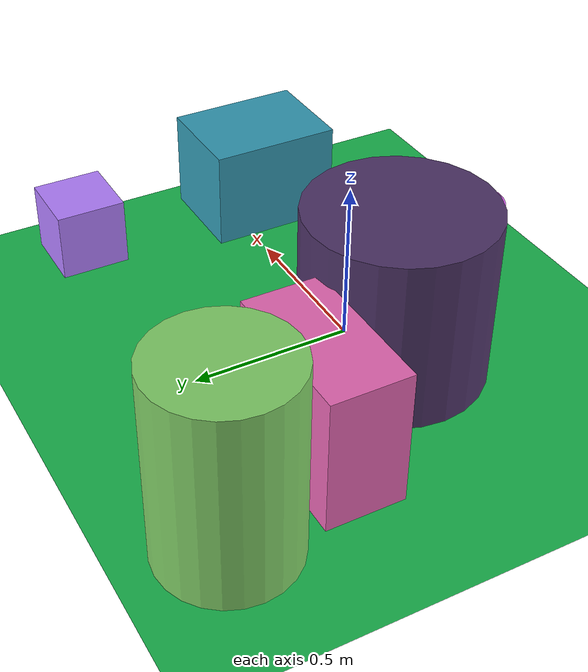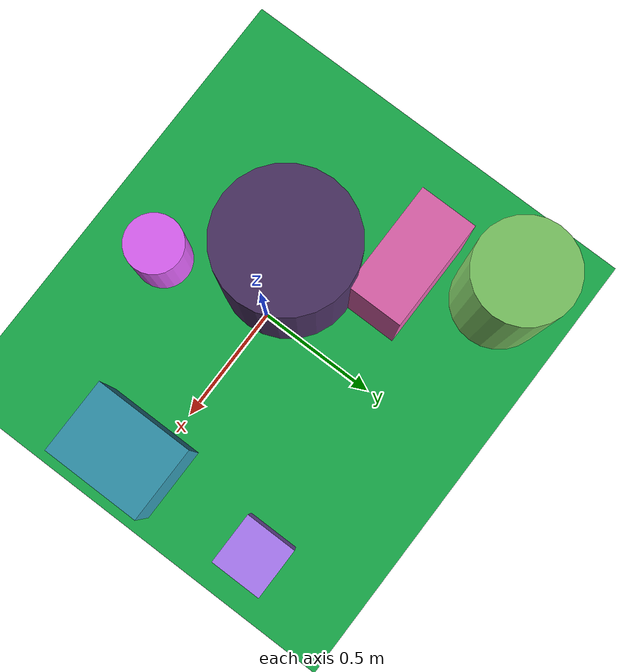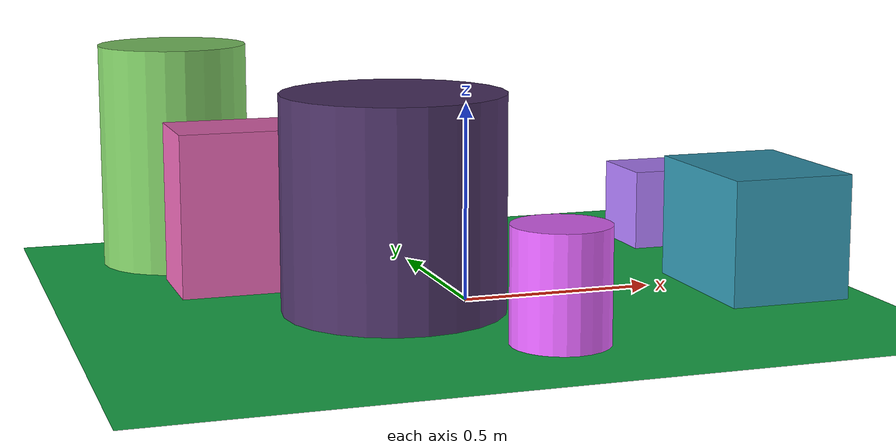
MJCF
<mujoco>
   <asset>
<texture type="skybox" builtin="gradient" rgb1="0.6 0.6 0.4" rgb2="0.9 0.8 0.1" width="256" height="256"/>
<texture name="flat_0" builtin="flat" rgb1="0.9 0.4 1.0" rgb2="0.9 0.4 1.0"  width="200" height="200"/>
<texture name="flat_1" builtin="flat" rgb1="0.5 0.8 0.4" rgb2="0.5 0.8 0.4"  width="200" height="200"/>
<texture name="flat_2" builtin="flat" rgb1="0.3 0.2 0.4" rgb2="0.3 0.2 0.4"  width="200" height="200"/>
<texture name="flat_3" builtin="flat" rgb1="0.9 0.4 0.7" rgb2="0.9 0.4 0.7"  width="200" height="200"/>
<texture name="flat_4" builtin="flat" rgb1="0.7 0.5 1.0" rgb2="0.7 0.5 1.0"  width="200" height="200"/>
<texture name="flat_5" builtin="flat" rgb1="0.2 0.6 0.7" rgb2="0.2 0.6 0.7"  width="200" height="200"/><material name="flat_0_mat" reflectance="0" texture="flat_0" texuniform="true"/>
<material name="flat_1_mat" reflectance="0" texture="flat_1" texuniform="true"/>
<material name="flat_2_mat" reflectance="0" texture="flat_2" texuniform="true"/>
<material name="flat_3_mat" reflectance="0" texture="flat_3" texuniform="true"/>
<material name="flat_4_mat" reflectance="0" texture="flat_4" texuniform="true"/>
<material name="flat_5_mat" reflectance="0" texture="flat_5" texuniform="true"/>
   </asset>

   <worldbody>
      <light diffuse=".9 .9 .9" pos="0 0 3" dir="0 0 -1"/>
     <geom type="plane" size="1 1 0.1" rgba="0.1 0.7 0.3 1"/>
<geom type="cylinder" pos="0.07 -0.47 0.14" size="0.12 0.14 0.14" material="flat_0_mat" />
<geom type="cylinder" pos="-0.61 0.7 0.3" size="0.2 0.3 0.3" material="flat_1_mat" />
<geom type="cylinder" pos="-0.2 -0.04 0.27" size="0.28 0.27 0.27" material="flat_2_mat" />
<geom type="box" pos="-0.45 0.34 0.21" size="0.23 0.12 0.21" material="flat_3_mat" />
<geom type="box" pos="0.77 0.54 0.11" size="0.11 0.11 0.11" material="flat_4_mat" />
<geom type="box" pos="0.76 -0.09 0.16" size="0.16 0.21 0.16" material="flat_5_mat" /><camera euler="60 0 180" fovy="60" name="camera_a" pos="0 -1.5 1"></camera>   </worldbody>
</mujoco>
